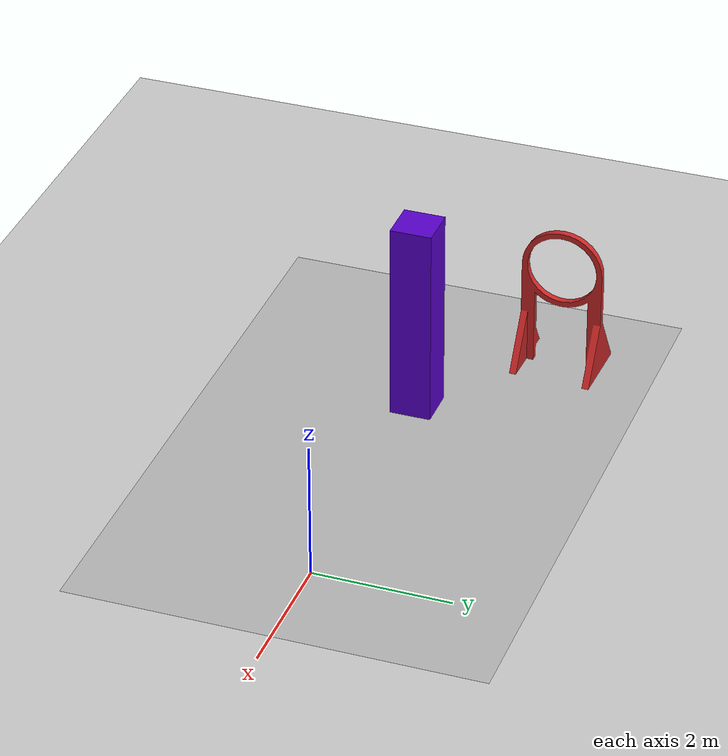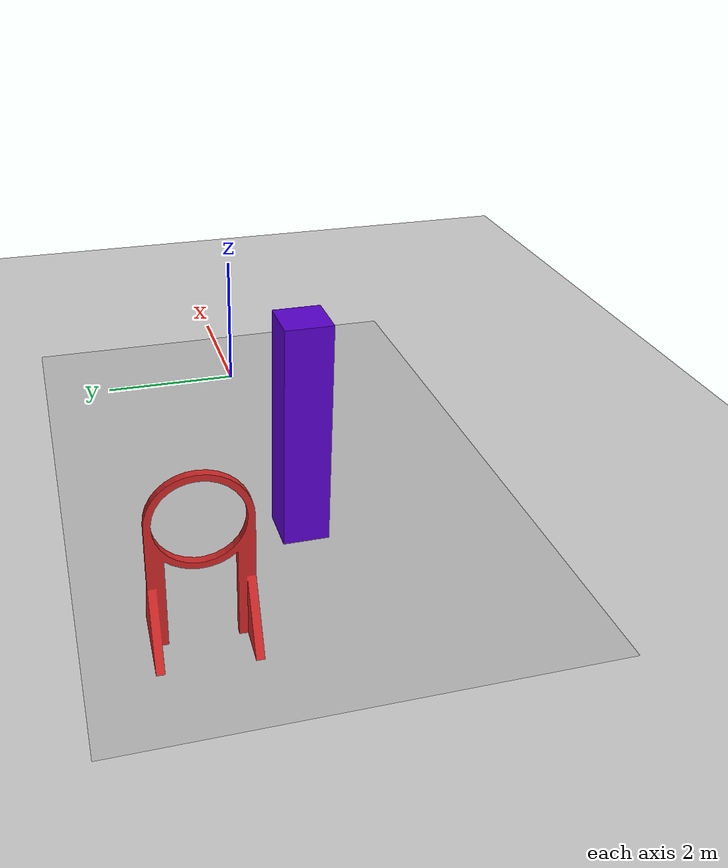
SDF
<sdf version="1.7">
 <world name="default">
  <light name="sun" type="directional">
   <pose>0 0 10 0 -0 0</pose>
   <diffuse>0.8 0.8 0.8 1</diffuse>
   <specular>0.2 0.2 0.2 1</specular>
   <attenuation>
    <range>1000</range>
    <constant>0.9</constant>
    <linear>0.01</linear>
    <quadratic>0.001</quadratic>
   </attenuation>
   <direction>-0.5 0.1 -0.9</direction>
   <spot><inner_angle>0</inner_angle><outer_angle>0</outer_angle><falloff>0</falloff></spot>
  </light>
  <model name="ground_plane">
   <static>1</static>
   <link name="link">
    <collision name="collision">
     <geometry><plane><normal>0 0 1</normal><size>100 100</size></plane></geometry>
     <surface>
      <contact><collide_bitmask>65535</collide_bitmask></contact>
      <friction><ode><mu>100</mu><mu2>50</mu2></ode></friction>
     </surface>
    </collision>
    <visual name="visual">
     <cast_shadows>0</cast_shadows>
     <geometry><plane><normal>0 0 1</normal><size>100 100</size></plane></geometry>
     <material>
      <script><uri>file://media/materials/scripts/gazebo.material</uri><name>Gazebo/Grey</name></script>
     </material>
    </visual>
   </link>
  </model>
  <gravity>0 0 -9.8</gravity>
  <magnetic_field>6e-06 2.3e-05 -4.2e-05</magnetic_field>
  <atmosphere type="adiabatic"/>
  <physics type="ode">
   <max_step_size>0.001</max_step_size>
   <real_time_factor>1</real_time_factor>
   <real_time_update_rate>1000</real_time_update_rate>
  </physics>
  <scene><ambient>0.4 0.4 0.4 1</ambient><background>0.7 0.7 0.7 1</background><shadows>1</shadows></scene>
  <spherical_coordinates>
   <surface_model>EARTH_WGS84</surface_model>
   <latitude_deg>0</latitude_deg>
   <longitude_deg>0</longitude_deg>
   <elevation>0</elevation>
   <heading_deg>0</heading_deg>
  </spherical_coordinates>
  <model name="race_worldd">
   <link name="link_0">
    <inertial>
     <mass>1</mass>
     <inertia>
      <ixx>0.166667</ixx>
      <ixy>0</ixy>
      <ixz>0</ixz>
      <iyy>0.166667</iyy>
      <iyz>0</iyz>
      <izz>0.166667</izz>
     </inertia>
    </inertial>
    <visual name="visual">
     <geometry>
      <mesh>
       <uri>/home/nuc/craic_ws/src/craic_mission/world/RACE_GROUND/racingblend.dae</uri>
       <scale>1 1 1</scale>
      </mesh>
     </geometry>
    </visual>
    <collision name="collision">
     <geometry>
      <mesh>
       <uri>/home/nuc/craic_ws/src/craic_mission/world/RACE_GROUND/racingblend.dae</uri>
       <scale>1 1 1</scale>
      </mesh>
     </geometry>
     <surface>
      <friction>
       <ode><mu>1</mu><mu2>1</mu2><fdir1>0 0 0</fdir1><slip1>0</slip1><slip2>0</slip2></ode>
       <torsional>
        <coefficient>1</coefficient>
        <patch_radius>0</patch_radius>
        <surface_radius>0</surface_radius>
        <use_patch_radius>1</use_patch_radius>
        <ode><slip>0</slip></ode>
       </torsional>
      </friction>
      <bounce><restitution_coefficient>0</restitution_coefficient><threshold>1e+06</threshold></bounce>
      <contact>
       <collide_without_contact>0</collide_without_contact>
       <collide_without_contact_bitmask>1</collide_without_contact_bitmask>
       <collide_bitmask>1</collide_bitmask>
       <ode>
        <soft_cfm>0</soft_cfm>
        <soft_erp>0.2</soft_erp>
        <kp>1e+13</kp>
        <kd>1</kd>
        <max_vel>0.01</max_vel>
        <min_depth>0</min_depth>
       </ode>
       <bullet>
        <split_impulse>1</split_impulse>
        <split_impulse_penetration_threshold>-0.01</split_impulse_penetration_threshold>
        <soft_cfm>0</soft_cfm>
        <soft_erp>0.2</soft_erp>
        <kp>1e+13</kp>
        <kd>1</kd>
       </bullet>
      </contact>
     </surface>
    </collision>
   </link>
   <static>1</static>
   <pose>-3.00579 -0.000276 0.001 0 -0 0</pose>
  </model>
  <model name="rings">
   <link name="link_0">
    <inertial>
     <mass>1</mass>
     <inertia>
      <ixx>0.166667</ixx>
      <ixy>0</ixy>
      <ixz>0</ixz>
      <iyy>0.166667</iyy>
      <iyz>0</iyz>
      <izz>0.166667</izz>
     </inertia>
    </inertial>
    <pose>-0 -0 0 3.14159 -0 0</pose>
    <visual name="visual">
     <geometry>
      <mesh>
       <uri>/home/nuc/craic_ws/src/craic_mission/world/RACE_GROUND/rings/base_link.stl</uri>
       <scale>1 1 1</scale>
      </mesh>
     </geometry>
     <material>
      <lighting>1</lighting>
      <script><uri>file://media/materials/scripts/gazebo.material</uri><name>Gazebo/Red</name></script>
      <shader type="pixel"><normal_map>__default__</normal_map></shader>
     </material>
    </visual>
    <collision name="collision">
     <geometry>
      <mesh>
       <uri>/home/nuc/craic_ws/src/craic_mission/world/RACE_GROUND/rings/base_link.stl</uri>
       <scale>1 1 1</scale>
      </mesh>
     </geometry>
     <surface>
      <friction>
       <ode><mu>1</mu><mu2>1</mu2><fdir1>0 0 0</fdir1><slip1>0</slip1><slip2>0</slip2></ode>
       <torsional>
        <coefficient>1</coefficient>
        <patch_radius>0</patch_radius>
        <surface_radius>0</surface_radius>
        <use_patch_radius>1</use_patch_radius>
        <ode><slip>0</slip></ode>
       </torsional>
      </friction>
      <bounce><restitution_coefficient>0</restitution_coefficient><threshold>1e+06</threshold></bounce>
      <contact>
       <collide_without_contact>0</collide_without_contact>
       <collide_without_contact_bitmask>1</collide_without_contact_bitmask>
       <collide_bitmask>1</collide_bitmask>
       <ode>
        <soft_cfm>0</soft_cfm>
        <soft_erp>0.2</soft_erp>
        <kp>1e+13</kp>
        <kd>1</kd>
        <max_vel>0.01</max_vel>
        <min_depth>0</min_depth>
       </ode>
       <bullet>
        <split_impulse>1</split_impulse>
        <split_impulse_penetration_threshold>-0.01</split_impulse_penetration_threshold>
        <soft_cfm>0</soft_cfm>
        <soft_erp>0.2</soft_erp>
        <kp>1e+13</kp>
        <kd>1</kd>
       </bullet>
      </contact>
     </surface>
    </collision>
   </link>
   <static>1</static>
   <pose>-6.06762 1.60265 1.6 0 -0 1.54</pose>
  </model>
  <light name="user_directional_light_0" type="directional">
   <pose>-2.88122 -0.219284 1 0 -0 0</pose>
   <diffuse>0.5 0.5 0.5 1</diffuse>
   <specular>0.1 0.1 0.1 1</specular>
   <direction>0.1 0.1 -0.9</direction>
   <attenuation>
    <range>20</range>
    <constant>0.5</constant>
    <linear>0.01</linear>
    <quadratic>0.001</quadratic>
   </attenuation>
  </light>
  <light name="user_directional_light_1" type="directional">
   <pose>-1.89511 -0.230625 1 0 -0 0</pose>
   <diffuse>0.5 0.5 0.5 1</diffuse>
   <specular>0.1 0.1 0.1 1</specular>
   <direction>0.1 0.1 -0.9</direction>
   <attenuation>
    <range>20</range>
    <constant>0.5</constant>
    <linear>0.01</linear>
    <quadratic>0.001</quadratic>
   </attenuation>
  </light>
 </world>
</sdf>
